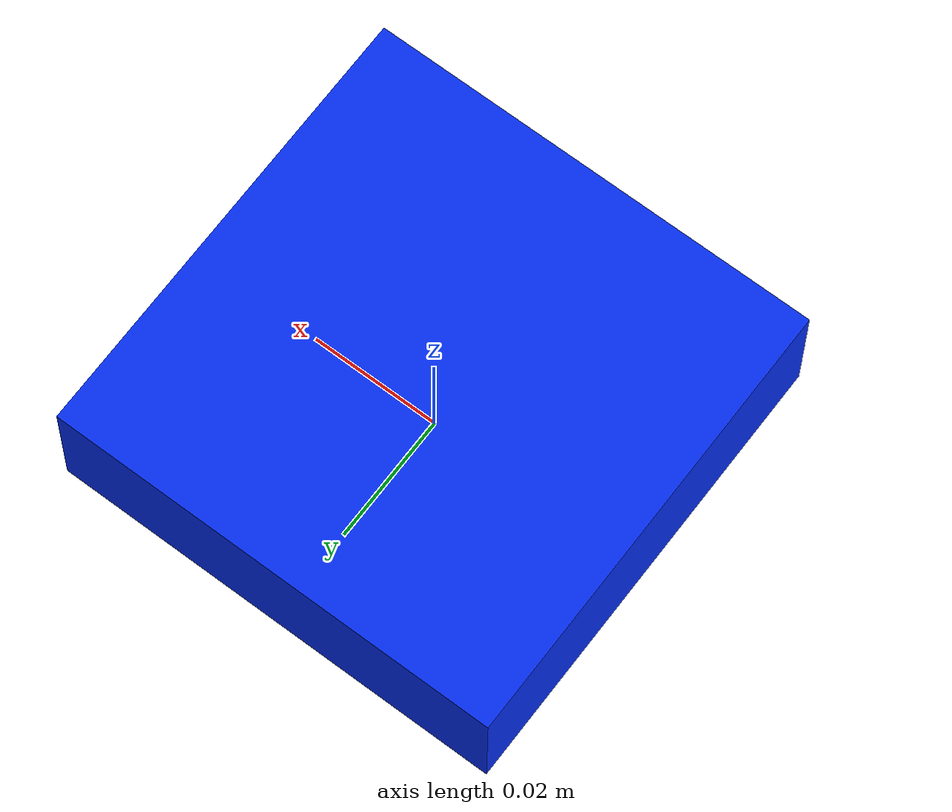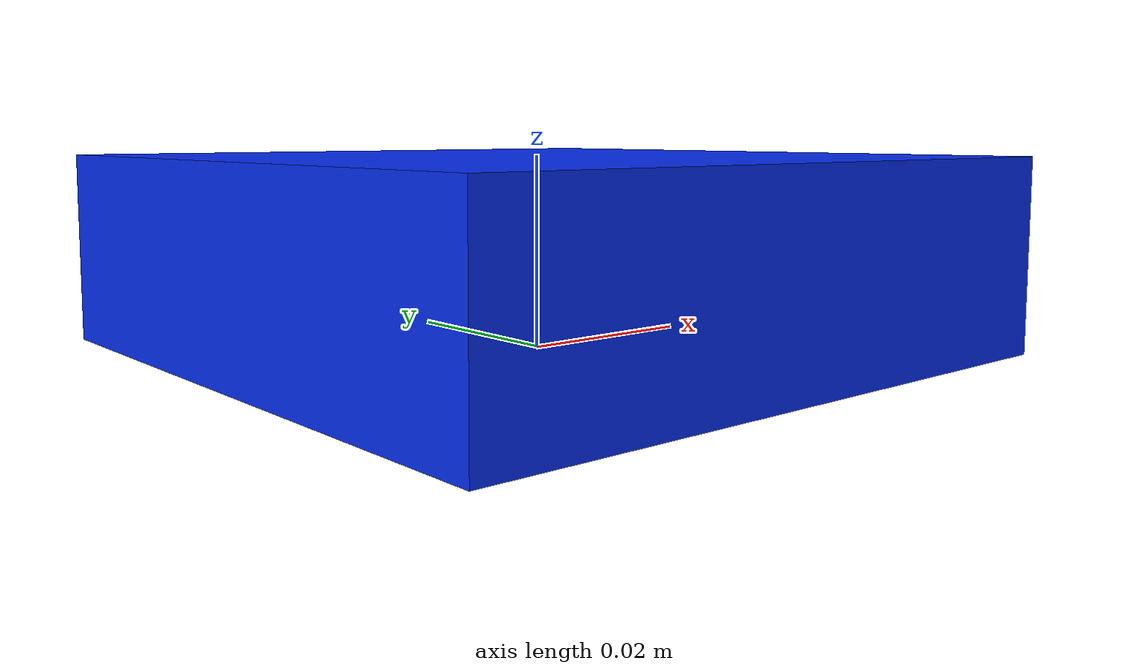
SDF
<?xml version="1.0"?>
<sdf version="1.6">
  <model name="blue_placement_platform">
    <static>true</static>

    <link name="platform_body">
      <pose>0 0 0.010 0 0 0</pose>
      <inertial>
        <mass>0.10</mass>
        <inertia>
          <ixx>0.00012</ixx>
          <iyy>0.00012</iyy>
          <izz>0.00020</izz>
          <ixy>0</ixy>
          <ixz>0</ixz>
          <iyz>0</iyz>
        </inertia>
      </inertial>
      <collision name="collision">
        <geometry>
          <box>
            <size>0.07 0.07 0.02</size>
          </box>
        </geometry>
      </collision>
      <visual name="visual">
        <geometry>
          <box>
            <size>0.07 0.07 0.02</size>
          </box>
        </geometry>
        <material>
          <ambient>0.02 0.12 0.85 1</ambient>
          <diffuse>0.02 0.18 0.95 1</diffuse>
          <specular>0.15 0.15 0.25 1</specular>
        </material>
      </visual>
    </link>
  </model>
</sdf>
